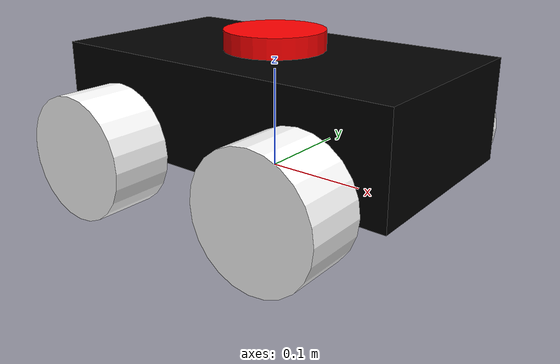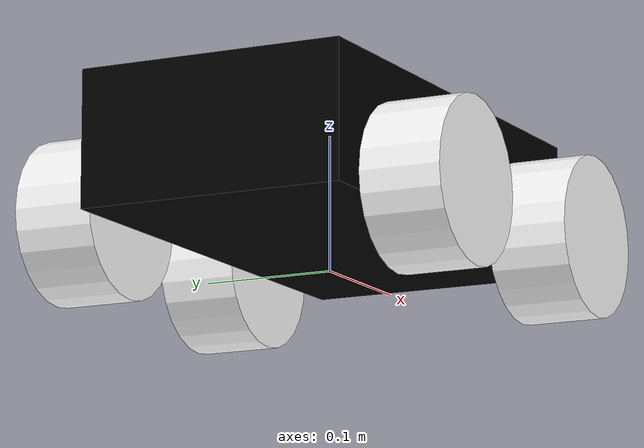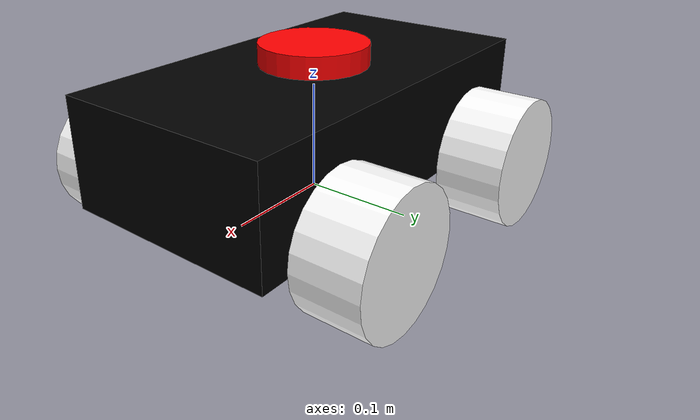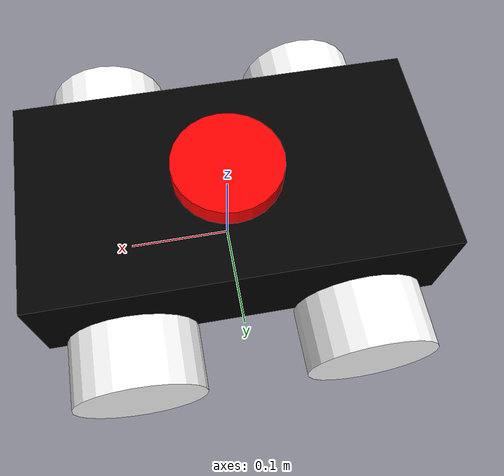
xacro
<?xml version="1.0"?>
<robot name="edson">

    <material name="black">
        <color rgba="0 0 0 1"/>
    </material>

    <material name="white">
        <color rgba="1 1 1 1"/>
    </material>

    <material name="red">
        <color rgba="1 0 0 1"/>
    </material>

    <!-- Base link -->

    <link name="base_link">

    </link>

    <joint name="base_footprint_joint" type="fixed">
        <parent link="base_link"/>
        <child link="base_footprint"/>
        <origin xyz="0 0 0" rpy="0 0 0"/>
    </joint>

    <link name="base_footprint">
    </link>

    <link name="chassis">
        <inertial>
            <origin xyz="0 0 0" rpy="0 0 0"/>
            <mass value="1.0"/>
            <inertia ixx="0.1" ixy="0.0" ixz="0.0" iyy="0.1" iyz="0.0" izz="0.1"/>
        </inertial>
        <visual>
            <origin xyz="0 0 0.07" rpy="0 0 0"/>
            <geometry>
                <box size="0.37 0.2 0.1"/>
            </geometry>
            <material name="black"/>
        </visual>
        <collision>
            <origin xyz="0 0 0.07" rpy="0 0 0"/>
            <geometry>
                <box size="0.37 0.2 0.1"/>
            </geometry>
        </collision>
    </link>

    <joint name="chassis_joint" type="fixed">
        <parent link="base_link"/>
        <child link="chassis"/>
        <origin xyz="0 0 0" rpy="0 0 0"/>
    </joint>

    <link name="laser_frame">
        <inertial>
            <origin xyz="0 0 0" rpy="0 0 0"/>
            <mass value="0.1"/>
            <inertia ixx="0.001" ixy="0.0" ixz="0.0" iyy="0.001" iyz="0.0" izz="0.001"/>
        </inertial>
        <visual>
            <origin xyz="0 0 0" rpy="0 0 0"/>
            <geometry>
                <cylinder radius="0.05" length="0.02"/>
            </geometry>
            <material name="red"/>
        </visual>
        <collision>
            <origin xyz="0 0 0" rpy="0 0 0"/>
            <geometry>
                <cylinder radius="0.05" length="0.02"/>
            </geometry>
        </collision>
    </link>

    <joint name="lidar_joint" type="fixed">
        <parent link="chassis"/>
        <child link="laser_frame"/>
        <origin xyz="0 0 0.13" rpy="0 0 0"/>
    </joint>

    <link name="left_front_wheel_link">
        <inertial>
            <origin xyz="0 0 0" rpy="0 0 0"/>
            <mass value="0.2"/>
            <inertia ixx="0.002" ixy="0.0" ixz="0.0" iyy="0.002" iyz="0.0" izz="0.002"/>
        </inertial>
        <visual>
            <origin xyz="0 0 0" rpy="0 0 0"/>
            <geometry>
                <cylinder radius="0.06" length="0.06"/>
            </geometry>
            <material name="white"/>
        </visual>
        <collision>
            <origin xyz="0 0 0" rpy="0 0 0"/>
            <geometry>
                <cylinder radius="0.06" length="0.06"/>
            </geometry>
        </collision>
    </link>

    <joint name="left_front_wheel_joint" type="continuous">
        <parent link="base_link"/>
        <child link="left_front_wheel_link"/>
        <origin xyz="0.105 0.135 0.03" rpy="-1.57 0 0"/>
        <axis xyz="0 0 -1"/>
    </joint>

    <link name="right_front_wheel_link">
        <inertial>
            <origin xyz="0 0 0" rpy="0 0 0"/>
            <mass value="0.2"/>
            <inertia ixx="0.002" ixy="0.0" ixz="0.0" iyy="0.002" iyz="0.0" izz="0.002"/>
        </inertial>
        <visual>
            <origin xyz="0 0 0" rpy="0 0 0"/>
            <geometry>
                <cylinder radius="0.06" length="0.06"/>
            </geometry>
            <material name="white"/>
        </visual>
        <collision>
            <origin xyz="0 0 0" rpy="0 0 0"/>
            <geometry>
                <cylinder radius="0.06" length="0.06"/>
            </geometry>
        </collision>
    </link>

    <joint name="right_front_wheel_joint" type="continuous">
        <parent link="base_link"/>
        <child link="right_front_wheel_link"/>
        <origin xyz="0.105 -0.135 0.03" rpy="1.57 0 0"/>
        <axis xyz="0 0 -1"/>
    </joint>

    <link name="left_rear_wheel_link">
        <inertial>
            <origin xyz="0 0 0" rpy="0 0 0"/>
            <mass value="0.2"/>
            <inertia ixx="0.002" ixy="0.0" ixz="0.0" iyy="0.002" iyz="0.0" izz="0.002"/>
        </inertial>
        <visual>
            <origin xyz="0 0 0" rpy="0 0 0"/>
            <geometry>
                <cylinder radius="0.06" length="0.06"/>
            </geometry>
            <material name="white"/>
        </visual>
        <collision>
            <origin xyz="0 0 0" rpy="0 0 0"/>
            <geometry>
                <cylinder radius="0.06" length="0.06"/>
            </geometry>
        </collision>
    </link>

    <joint name="left_rear_wheel_joint" type="continuous">
        <parent link="base_link"/>
        <child link="left_rear_wheel_link"/>
        <origin xyz="-0.105 0.135 0.03" rpy="-1.57 0 0"/>
        <axis xyz="0 0 -1"/>
    </joint>

    <link name="right_rear_wheel_link">
        <inertial>
            <origin xyz="0 0 0" rpy="0 0 0"/>
            <mass value="0.2"/>
            <inertia ixx="0.002" ixy="0.0" ixz="0.0" iyy="0.002" iyz="0.0" izz="0.002"/>
        </inertial>
        <visual>
            <origin xyz="0 0 0" rpy="0 0 0"/>
            <geometry>
                <cylinder radius="0.06" length="0.06"/>
            </geometry>
            <material name="white"/>
        </visual>
        <collision>
            <origin xyz="0 0 0" rpy="0 0 0"/>
            <geometry>
                <cylinder radius="0.06" length="0.06"/>
            </geometry>
        </collision>
    </link>

    <joint name="right_rear_wheel_joint" type="continuous">
        <parent link="base_link"/>
        <child link="right_rear_wheel_link"/>
        <origin xyz="-0.105 -0.135 0.03" rpy="1.57 0 0"/>
        <axis xyz="0 0 -1"/>
    </joint>

</robot>
